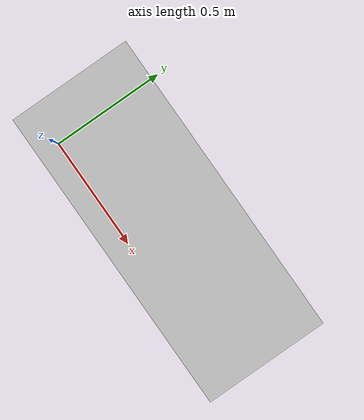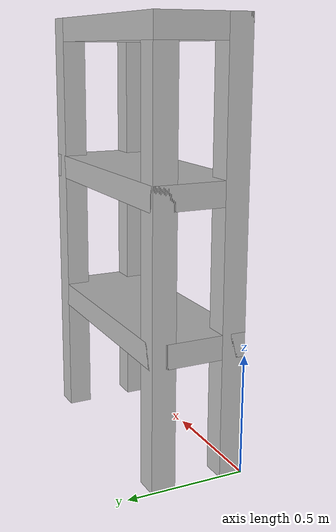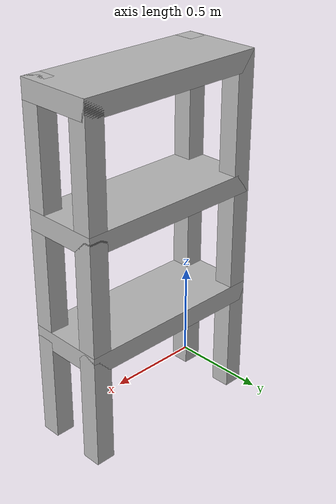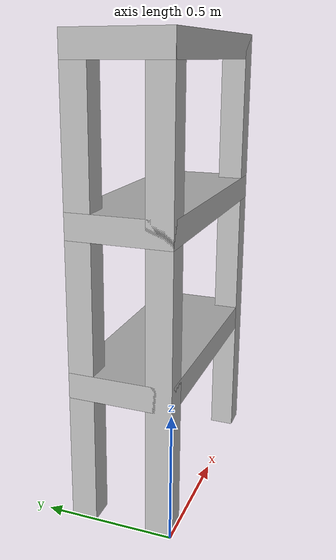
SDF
<?xml version='1.0'?>
<sdf version='1.11'>
<model name='mm'>
  <static>true</static>

  <link name='base1'>
	<pose>0.5 0.2 1.75 0 0 0</pose>
	<visual name='base1-v'>
		<geometry>
		  <box>
		    <size>1 0.4 0.1</size>
		  </box>
		</geometry>
		<material>
		  <diffuse>0.726 0.726 0.726 1</diffuse>
		  <ambient>0.726 0.726 0.726 1</ambient>
		  <specular>0.726 0.726 0.726 1</specular>
		</material>
	</visual>
	<collision name='base1-c'>
		<geometry>
		  <box>
		    <size>1 0.4 0.1</size>
		  </box>
		</geometry>
	</collision>
  </link>

  <link name='base2'>
	<pose>0.5 0.2 1.15 0 0 0</pose>
	<visual name='base2-v'>
		<geometry>
		  <box>
		    <size>1 0.4 0.1</size>
		  </box>
		</geometry>
		<material>
		  <diffuse>0.726 0.726 0.726 1</diffuse>
		  <ambient>0.726 0.726 0.726 1</ambient>
		  <specular>0.726 0.726 0.726 1</specular>
		</material>
	</visual>
	<collision name='base2-c'>
		<geometry>
		  <box>
		    <size>1 0.4 0.1</size>
		  </box>
		</geometry>
	</collision>
  </link>

  <link name='base3'>
	<pose>0.5 0.2 0.55 0 0 0</pose>
	<visual name='base3-v'>
		<geometry>
		  <box>
		    <size>1 0.4 0.1</size>
		  </box>
		</geometry>
		<material>
		  <diffuse>0.726 0.726 0.726 1</diffuse>
		  <ambient>0.726 0.726 0.726 1</ambient>
		  <specular>0.726 0.726 0.726 1</specular>
		</material>
	</visual>
	<collision name='base3-c'>
		<geometry>
		  <box>
		    <size>1 0.4 0.1</size>
		  </box>
		</geometry>
	</collision>
  </link>

  <link name='leg1'>
	<pose>0.05 0.05 0.9 0 0 0</pose>
	<visual name='leg1-v'>
	  <geometry>
	    <box>
		  <size>0.1 0.1 1.8</size>
		</box>
	  </geometry>
	  <material>
		<diffuse>0.726 0.726 0.726 1</diffuse>
		<ambient>0.726 0.726 0.726 1</ambient>
		<specular>0.726 0.726 0.726 1</specular>
	  </material>
	</visual>
	<collision name='leg1-c'>
	  <geometry>
	    <box>
		  <size>0.1 0.1 1.8</size>
		</box>
	  </geometry>
	</collision>
  </link>

  <link name='leg2'>
	<pose>0.05 0.35 0.9 0 0 0</pose>
	<visual name='leg2-v'>
	  <geometry>
	    <box>
		  <size>0.1 0.1 1.8</size>
		</box>
	  </geometry>
	  <material>
		<diffuse>0.726 0.726 0.726 1</diffuse>
		<ambient>0.726 0.726 0.726 1</ambient>
		<specular>0.726 0.726 0.726 1</specular>
	  </material>
	</visual>
	<collision name='leg2-c'>
	  <geometry>
	    <box>
		  <size>0.1 0.1 1.8</size>
		</box>
	  </geometry>
	</collision>
  </link>

  <link name='leg3'>
	<pose>0.95 0.05 0.9 0 0 0</pose>
	<visual name='leg3-v'>
	  <geometry>
	    <box>
		  <size>0.1 0.1 1.8</size>
		</box>
	  </geometry>
	  <material>
		<diffuse>0.726 0.726 0.726 1</diffuse>
		<ambient>0.726 0.726 0.726 1</ambient>
		<specular>0.726 0.726 0.726 1</specular>
	  </material>
	</visual>
	<collision name='leg3-c'>
	  <geometry>
	    <box>
		  <size>0.1 0.1 1.8</size>
		</box>
	  </geometry>
	</collision>
  </link>

  <link name='leg4'>
	<pose>0.95 0.35 0.9 0 0 0</pose>
	<visual name='leg4-v'>
	  <geometry>
	    <box>
		  <size>0.1 0.1 1.8</size>
		</box>
	  </geometry>
	  <material>
		<diffuse>0.726 0.726 0.726 1</diffuse>
		<ambient>0.726 0.726 0.726 1</ambient>
		<specular>0.726 0.726 0.726 1</specular>
	  </material>
	</visual>
	<collision name='leg4-c'>
	  <geometry>
	    <box>
		  <size>0.1 0.1 1.8</size>
		</box>
	  </geometry>
	</collision>
  </link>

</model>
</sdf>
